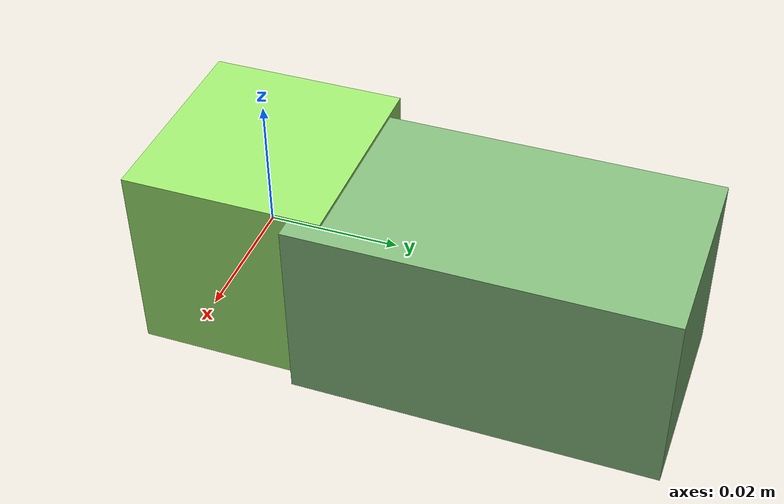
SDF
<sdf version="1.4"><world name="default"><model name="object0"><link name="link1"><pose>0 0 0 0 0 0</pose><inertial><pose>0 0 0 0 0 0</pose><mass>0.01703566237875071</mass><inertia><ixx>2.5553493568126064e-06</ixx><ixy>0</ixy><iyy>2.6905645360310842e-06</iyy><ixz>0</ixz><iyz>0</iyz><izz>2.6905645360310842e-06</izz></inertia></inertial><visual name="link1_visual"><pose>0 0  0 0 0 0</pose><geometry><box><size>0.03154752292361243 0.03 0.03</size></box></geometry><material><diffuse>0.6224719740514157 0.9085322544802534 0.43672005300671213 1</diffuse></material></visual><collision><pose>0 0  0 0 0 0</pose><geometry><box><size>0.03154752292361243 0.03 0.03</size></box></geometry></collision></link><link name="link2"><pose>0.003703770159154825 0.03778434613253767 0 0 0 0</pose><inertial><pose>0 0 0 0 0 0</pose><mass>0.029753525610748118</mass><inertia><ixx>9.612652991332485e-06</ixx><ixy>0</ixy><iyy>4.316740674026039e-06</iyy><ixz>0</ixz><iyz>0</iyz><izz>9.758941158918663e-06</izz></inertia></inertial><visual name="link2_visual"><pose>0 0  0 0 0 0</pose><geometry><box><size>0.03 0.055099121501385406 0.028999999999999998</size></box></geometry><material><diffuse>0.518272542845047 0.7319961544648201 0.4849162954376734 1</diffuse></material></visual><collision><pose>0 0  0 0 0 0</pose><geometry><box><size>0.03 0.055099121501385406 0.028999999999999998</size></box></geometry></collision></link><joint name="link_joint_0" type="fixed"><parent>link1</parent><child>link2</child><pose>0 0 0 0 0 0</pose><axis><xyz>0 0 1</xyz></axis></joint></model></world></sdf>
